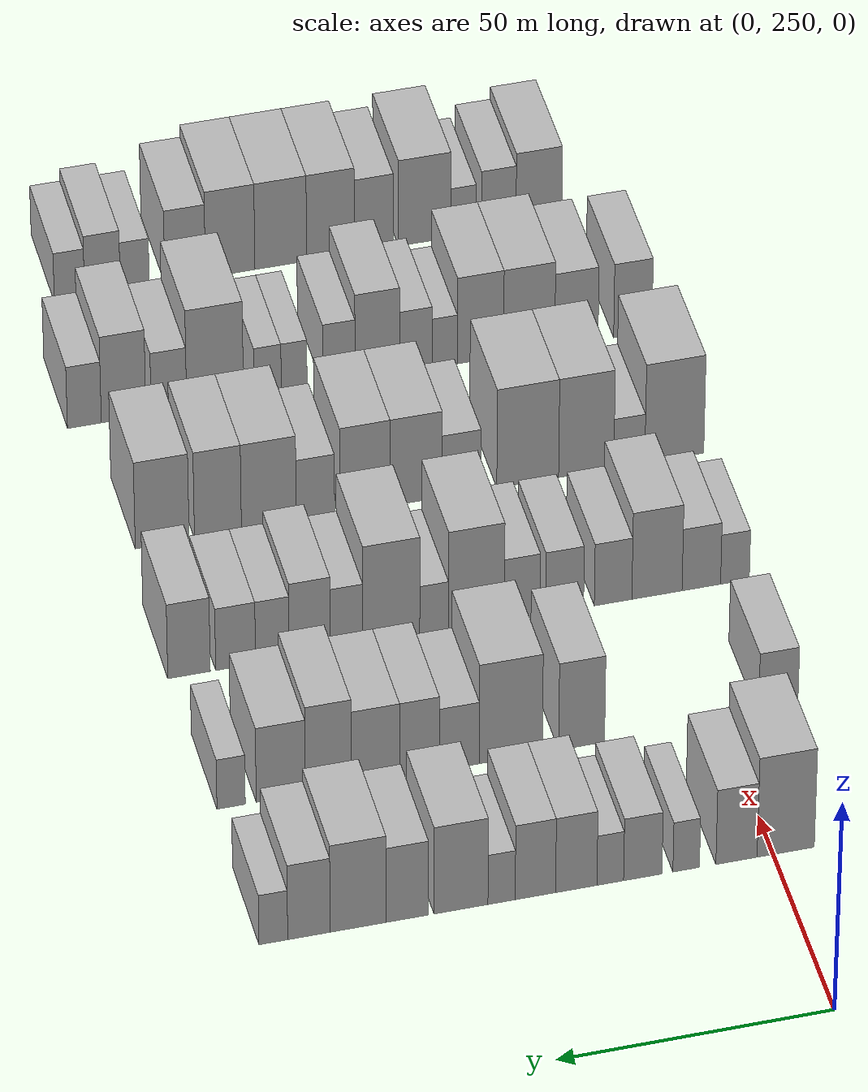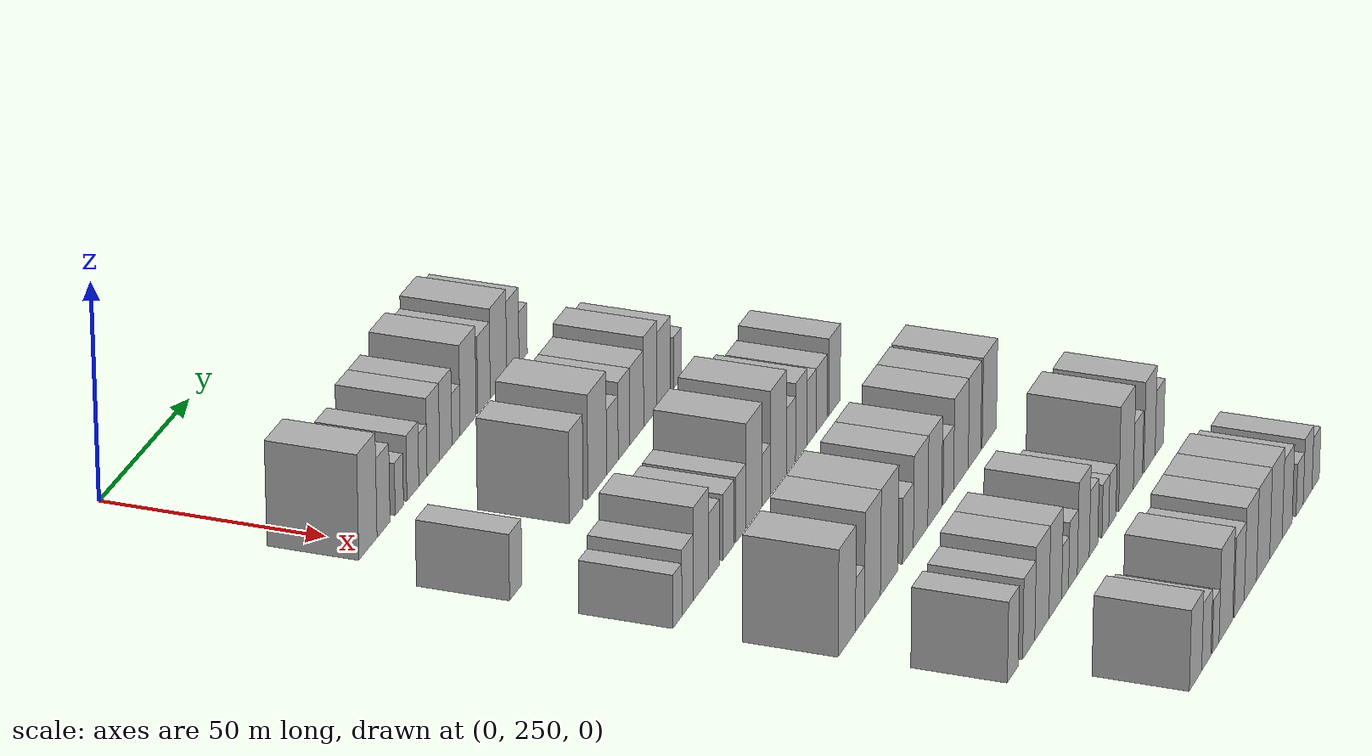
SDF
<sdf version="1.6">
 <world name="default">
  <model name="building_74">
   <static>1</static>
   <pose>50.0000 247.7306 0 0.000000 0.000000 0.000000</pose>
   <link name="link">
    <pose>0 0 12.00 0 0 0</pose>
    <collision name="collision"><geometry><box><size>20.0000 10.4623 24.0000</size></box></geometry></collision>
    <visual name="visual">
     <cast_shadows>0</cast_shadows>
     <geometry><box><size>20.0000 10.4623 24.0000</size></box></geometry>
     <material>
      <script>
       <uri>model://HANNAS_wall/materials/scripts</uri>
       <uri>model://HANNAS_wall/materials/textures</uri>
       <name>vrc/HANNAS_wall</name>
      </script>
     </material>
    </visual>
   </link>
  </model>
  <model name="building_75">
   <static>1</static>
   <pose>50.0000 256.7240 0 0.000000 0.000000 0.000000</pose>
   <link name="link">
    <pose>0 0 9.00 0 0 0</pose>
    <collision name="collision"><geometry><box><size>20.0000 7.5244 18.0000</size></box></geometry></collision>
    <visual name="visual">
     <cast_shadows>0</cast_shadows>
     <geometry><box><size>20.0000 7.5244 18.0000</size></box></geometry>
     <material>
      <script>
       <uri>model://HANNAS_wall/materials/scripts</uri>
       <uri>model://HANNAS_wall/materials/textures</uri>
       <name>vrc/HANNAS_wall</name>
      </script>
     </material>
    </visual>
   </link>
  </model>
  <model name="building_76">
   <static>1</static>
   <pose>50.0000 265.9073 0 0.000000 0.000000 0.000000</pose>
   <link name="link">
    <pose>0 0 6.00 0 0 0</pose>
    <collision name="collision"><geometry><box><size>20.0000 4.8422 12.0000</size></box></geometry></collision>
    <visual name="visual">
     <cast_shadows>0</cast_shadows>
     <geometry><box><size>20.0000 4.8422 12.0000</size></box></geometry>
     <material>
      <script>
       <uri>model://HANNAS_wall/materials/scripts</uri>
       <uri>model://HANNAS_wall/materials/textures</uri>
       <name>vrc/HANNAS_wall</name>
      </script>
     </material>
    </visual>
   </link>
  </model>
  <model name="building_77">
   <static>1</static>
   <pose>50.0000 273.8192 0 0.000000 0.000000 0.000000</pose>
   <link name="link">
    <pose>0 0 7.50 0 0 0</pose>
    <collision name="collision"><geometry><box><size>20.0000 6.9817 15.0000</size></box></geometry></collision>
    <visual name="visual">
     <cast_shadows>0</cast_shadows>
     <geometry><box><size>20.0000 6.9817 15.0000</size></box></geometry>
     <material>
      <script>
       <uri>model://HANNAS_wall/materials/scripts</uri>
       <uri>model://HANNAS_wall/materials/textures</uri>
       <name>vrc/HANNAS_wall</name>
      </script>
     </material>
    </visual>
   </link>
  </model>
  <model name="building_78">
   <static>1</static>
   <pose>50.0000 279.7344 0 0.000000 0.000000 0.000000</pose>
   <link name="link">
    <pose>0 0 6.00 0 0 0</pose>
    <collision name="collision"><geometry><box><size>20.0000 4.8487 12.0000</size></box></geometry></collision>
    <visual name="visual">
     <cast_shadows>0</cast_shadows>
     <geometry><box><size>20.0000 4.8487 12.0000</size></box></geometry>
     <material>
      <script>
       <uri>model://HANNAS_wall/materials/scripts</uri>
       <uri>model://HANNAS_wall/materials/textures</uri>
       <name>vrc/HANNAS_wall</name>
      </script>
     </material>
    </visual>
   </link>
  </model>
  <model name="building_79">
   <static>1</static>
   <pose>50.0000 285.9103 0 0.000000 0.000000 0.000000</pose>
   <link name="link">
    <pose>0 0 9.00 0 0 0</pose>
    <collision name="collision"><geometry><box><size>20.0000 7.5031 18.0000</size></box></geometry></collision>
    <visual name="visual">
     <cast_shadows>0</cast_shadows>
     <geometry><box><size>20.0000 7.5031 18.0000</size></box></geometry>
     <material>
      <script>
       <uri>model://HANNAS_wall/materials/scripts</uri>
       <uri>model://HANNAS_wall/materials/textures</uri>
       <name>vrc/HANNAS_wall</name>
      </script>
     </material>
    </visual>
   </link>
  </model>
  <model name="building_80">
   <static>1</static>
   <pose>50.0000 293.3218 0 0.000000 0.000000 0.000000</pose>
   <link name="link">
    <pose>0 0 9.00 0 0 0</pose>
    <collision name="collision"><geometry><box><size>20.0000 7.3199 18.0000</size></box></geometry></collision>
    <visual name="visual">
     <cast_shadows>0</cast_shadows>
     <geometry><box><size>20.0000 7.3199 18.0000</size></box></geometry>
     <material>
      <script>
       <uri>model://HANNAS_wall/materials/scripts</uri>
       <uri>model://HANNAS_wall/materials/textures</uri>
       <name>vrc/HANNAS_wall</name>
      </script>
     </material>
    </visual>
   </link>
  </model>
  <model name="building_81">
   <static>1</static>
   <pose>50.0000 299.4504 0 0.000000 0.000000 0.000000</pose>
   <link name="link">
    <pose>0 0 6.00 0 0 0</pose>
    <collision name="collision"><geometry><box><size>20.0000 4.9373 12.0000</size></box></geometry></collision>
    <visual name="visual">
     <cast_shadows>0</cast_shadows>
     <geometry><box><size>20.0000 4.9373 12.0000</size></box></geometry>
     <material>
      <script>
       <uri>model://HANNAS_wall/materials/scripts</uri>
       <uri>model://HANNAS_wall/materials/textures</uri>
       <name>vrc/HANNAS_wall</name>
      </script>
     </material>
    </visual>
   </link>
  </model>
  <model name="building_82">
   <static>1</static>
   <pose>50.0000 306.7969 0 0.000000 0.000000 0.000000</pose>
   <link name="link">
    <pose>0 0 10.50 0 0 0</pose>
    <collision name="collision"><geometry><box><size>20.0000 9.7556 21.0000</size></box></geometry></collision>
    <visual name="visual">
     <cast_shadows>0</cast_shadows>
     <geometry><box><size>20.0000 9.7556 21.0000</size></box></geometry>
     <material>
      <script>
       <uri>model://HANNAS_wall/materials/scripts</uri>
       <uri>model://HANNAS_wall/materials/textures</uri>
       <name>vrc/HANNAS_wall</name>
      </script>
     </material>
    </visual>
   </link>
  </model>
  <model name="building_83">
   <static>1</static>
   <pose>50.0000 316.4888 0 0.000000 0.000000 0.000000</pose>
   <link name="link">
    <pose>0 0 9.00 0 0 0</pose>
    <collision name="collision"><geometry><box><size>20.0000 7.6284 18.0000</size></box></geometry></collision>
    <visual name="visual">
     <cast_shadows>0</cast_shadows>
     <geometry><box><size>20.0000 7.6284 18.0000</size></box></geometry>
     <material>
      <script>
       <uri>model://HANNAS_wall/materials/scripts</uri>
       <uri>model://HANNAS_wall/materials/textures</uri>
       <name>vrc/HANNAS_wall</name>
      </script>
     </material>
    </visual>
   </link>
  </model>
  <model name="building_84">
   <static>1</static>
   <pose>50.0000 325.3522 0 0.000000 0.000000 0.000000</pose>
   <link name="link">
    <pose>0 0 10.50 0 0 0</pose>
    <collision name="collision"><geometry><box><size>20.0000 10.0983 21.0000</size></box></geometry></collision>
    <visual name="visual">
     <cast_shadows>0</cast_shadows>
     <geometry><box><size>20.0000 10.0983 21.0000</size></box></geometry>
     <material>
      <script>
       <uri>model://HANNAS_wall/materials/scripts</uri>
       <uri>model://HANNAS_wall/materials/textures</uri>
       <name>vrc/HANNAS_wall</name>
      </script>
     </material>
    </visual>
   </link>
  </model>
  <model name="building_85">
   <static>1</static>
   <pose>50.0000 334.2241 0 0.000000 0.000000 0.000000</pose>
   <link name="link">
    <pose>0 0 9.00 0 0 0</pose>
    <collision name="collision"><geometry><box><size>20.0000 7.6456 18.0000</size></box></geometry></collision>
    <visual name="visual">
     <cast_shadows>0</cast_shadows>
     <geometry><box><size>20.0000 7.6456 18.0000</size></box></geometry>
     <material>
      <script>
       <uri>model://HANNAS_wall/materials/scripts</uri>
       <uri>model://HANNAS_wall/materials/textures</uri>
       <name>vrc/HANNAS_wall</name>
      </script>
     </material>
    </visual>
   </link>
  </model>
  <model name="building_86">
   <static>1</static>
   <pose>50.0000 340.6278 0 0.000000 0.000000 0.000000</pose>
   <link name="link">
    <pose>0 0 6.00 0 0 0</pose>
    <collision name="collision"><geometry><box><size>20.0000 5.1618 12.0000</size></box></geometry></collision>
    <visual name="visual">
     <cast_shadows>0</cast_shadows>
     <geometry><box><size>20.0000 5.1618 12.0000</size></box></geometry>
     <material>
      <script>
       <uri>model://HANNAS_wall/materials/scripts</uri>
       <uri>model://HANNAS_wall/materials/textures</uri>
       <name>vrc/HANNAS_wall</name>
      </script>
     </material>
    </visual>
   </link>
  </model>
  <model name="building_200">
   <static>1</static>
   <pose>85.0000 239.4064 0 0.000000 0.000000 0.000000</pose>
   <link name="link">
    <pose>0 0 7.50 0 0 0</pose>
    <collision name="collision"><geometry><box><size>20.0000 7.2721 15.0000</size></box></geometry></collision>
    <visual name="visual">
     <cast_shadows>0</cast_shadows>
     <geometry><box><size>20.0000 7.2721 15.0000</size></box></geometry>
     <material>
      <script>
       <uri>model://HANNAS_wall/materials/scripts</uri>
       <uri>model://HANNAS_wall/materials/textures</uri>
       <name>vrc/HANNAS_wall</name>
      </script>
     </material>
    </visual>
   </link>
  </model>
  <model name="building_201">
   <static>1</static>
   <pose>85.0000 275.7468 0 0.000000 0.000000 0.000000</pose>
   <link name="link">
    <pose>0 0 10.50 0 0 0</pose>
    <collision name="collision"><geometry><box><size>20.0000 8.4696 21.0000</size></box></geometry></collision>
    <visual name="visual">
     <cast_shadows>0</cast_shadows>
     <geometry><box><size>20.0000 8.4696 21.0000</size></box></geometry>
     <material>
      <script>
       <uri>model://HANNAS_wall/materials/scripts</uri>
       <uri>model://HANNAS_wall/materials/textures</uri>
       <name>vrc/HANNAS_wall</name>
      </script>
     </material>
    </visual>
   </link>
  </model>
  <model name="building_202">
   <static>1</static>
   <pose>85.0000 288.7773 0 0.000000 0.000000 0.000000</pose>
   <link name="link">
    <pose>0 0 12.00 0 0 0</pose>
    <collision name="collision"><geometry><box><size>20.0000 11.5916 24.0000</size></box></geometry></collision>
    <visual name="visual">
     <cast_shadows>0</cast_shadows>
     <geometry><box><size>20.0000 11.5916 24.0000</size></box></geometry>
     <material>
      <script>
       <uri>model://HANNAS_wall/materials/scripts</uri>
       <uri>model://HANNAS_wall/materials/textures</uri>
       <name>vrc/HANNAS_wall</name>
      </script>
     </material>
    </visual>
   </link>
  </model>
  <model name="building_203">
   <static>1</static>
   <pose>85.0000 298.2194 0 0.000000 0.000000 0.000000</pose>
   <link name="link">
    <pose>0 0 7.50 0 0 0</pose>
    <collision name="collision"><geometry><box><size>20.0000 7.2926 15.0000</size></box></geometry></collision>
    <visual name="visual">
     <cast_shadows>0</cast_shadows>
     <geometry><box><size>20.0000 7.2926 15.0000</size></box></geometry>
     <material>
      <script>
       <uri>model://HANNAS_wall/materials/scripts</uri>
       <uri>model://HANNAS_wall/materials/textures</uri>
       <name>vrc/HANNAS_wall</name>
      </script>
     </material>
    </visual>
   </link>
  </model>
  <model name="building_204">
   <static>1</static>
   <pose>85.0000 305.4978 0 0.000000 0.000000 0.000000</pose>
   <link name="link">
    <pose>0 0 9.00 0 0 0</pose>
    <collision name="collision"><geometry><box><size>20.0000 7.2642 18.0000</size></box></geometry></collision>
    <visual name="visual">
     <cast_shadows>0</cast_shadows>
     <geometry><box><size>20.0000 7.2642 18.0000</size></box></geometry>
     <material>
      <script>
       <uri>model://HANNAS_wall/materials/scripts</uri>
       <uri>model://HANNAS_wall/materials/textures</uri>
       <name>vrc/HANNAS_wall</name>
      </script>
     </material>
    </visual>
   </link>
  </model>
  <model name="building_205">
   <static>1</static>
   <pose>85.0000 313.5564 0 0.000000 0.000000 0.000000</pose>
   <link name="link">
    <pose>0 0 9.00 0 0 0</pose>
    <collision name="collision"><geometry><box><size>20.0000 8.8530 18.0000</size></box></geometry></collision>
    <visual name="visual">
     <cast_shadows>0</cast_shadows>
     <geometry><box><size>20.0000 8.8530 18.0000</size></box></geometry>
     <material>
      <script>
       <uri>model://HANNAS_wall/materials/scripts</uri>
       <uri>model://HANNAS_wall/materials/textures</uri>
       <name>vrc/HANNAS_wall</name>
      </script>
     </material>
    </visual>
   </link>
  </model>
  <model name="building_206">
   <static>1</static>
   <pose>85.0000 322.1854 0 0.000000 0.000000 0.000000</pose>
   <link name="link">
    <pose>0 0 10.50 0 0 0</pose>
    <collision name="collision"><geometry><box><size>20.0000 8.4050 21.0000</size></box></geometry></collision>
    <visual name="visual">
     <cast_shadows>0</cast_shadows>
     <geometry><box><size>20.0000 8.4050 21.0000</size></box></geometry>
     <material>
      <script>
       <uri>model://HANNAS_wall/materials/scripts</uri>
       <uri>model://HANNAS_wall/materials/textures</uri>
       <name>vrc/HANNAS_wall</name>
      </script>
     </material>
    </visual>
   </link>
  </model>
  <model name="building_207">
   <static>1</static>
   <pose>85.0000 330.8648 0 0.000000 0.000000 0.000000</pose>
   <link name="link">
    <pose>0 0 9.00 0 0 0</pose>
    <collision name="collision"><geometry><box><size>20.0000 8.9538 18.0000</size></box></geometry></collision>
    <visual name="visual">
     <cast_shadows>0</cast_shadows>
     <geometry><box><size>20.0000 8.9538 18.0000</size></box></geometry>
     <material>
      <script>
       <uri>model://HANNAS_wall/materials/scripts</uri>
       <uri>model://HANNAS_wall/materials/textures</uri>
       <name>vrc/HANNAS_wall</name>
      </script>
     </material>
    </visual>
   </link>
  </model>
  <model name="building_208">
   <static>1</static>
   <pose>85.0000 339.9182 0 0.000000 0.000000 0.000000</pose>
   <link name="link">
    <pose>0 0 6.00 0 0 0</pose>
    <collision name="collision"><geometry><box><size>20.0000 5.1531 12.0000</size></box></geometry></collision>
    <visual name="visual">
     <cast_shadows>0</cast_shadows>
     <geometry><box><size>20.0000 5.1531 12.0000</size></box></geometry>
     <material>
      <script>
       <uri>model://HANNAS_wall/materials/scripts</uri>
       <uri>model://HANNAS_wall/materials/textures</uri>
       <name>vrc/HANNAS_wall</name>
      </script>
     </material>
    </visual>
   </link>
  </model>
  <model name="building_324">
   <static>1</static>
   <pose>120.0000 237.8072 0 0.000000 0.000000 0.000000</pose>
   <link name="link">
    <pose>0 0 6.00 0 0 0</pose>
    <collision name="collision"><geometry><box><size>20.0000 5.3894 12.0000</size></box></geometry></collision>
    <visual name="visual">
     <cast_shadows>0</cast_shadows>
     <geometry><box><size>20.0000 5.3894 12.0000</size></box></geometry>
     <material>
      <script>
       <uri>model://HANNAS_wall/materials/scripts</uri>
       <uri>model://HANNAS_wall/materials/textures</uri>
       <name>vrc/HANNAS_wall</name>
      </script>
     </material>
    </visual>
   </link>
  </model>
  <model name="building_325">
   <static>1</static>
   <pose>120.0000 244.1196 0 0.000000 0.000000 0.000000</pose>
   <link name="link">
    <pose>0 0 7.50 0 0 0</pose>
    <collision name="collision"><geometry><box><size>20.0000 7.2354 15.0000</size></box></geometry></collision>
    <visual name="visual">
     <cast_shadows>0</cast_shadows>
     <geometry><box><size>20.0000 7.2354 15.0000</size></box></geometry>
     <material>
      <script>
       <uri>model://HANNAS_wall/materials/scripts</uri>
       <uri>model://HANNAS_wall/materials/textures</uri>
       <name>vrc/HANNAS_wall</name>
      </script>
     </material>
    </visual>
   </link>
  </model>
  <model name="building_326">
   <static>1</static>
   <pose>120.0000 252.4423 0 0.000000 0.000000 0.000000</pose>
   <link name="link">
    <pose>0 0 10.50 0 0 0</pose>
    <collision name="collision"><geometry><box><size>20.0000 9.4100 21.0000</size></box></geometry></collision>
    <visual name="visual">
     <cast_shadows>0</cast_shadows>
     <geometry><box><size>20.0000 9.4100 21.0000</size></box></geometry>
     <material>
      <script>
       <uri>model://HANNAS_wall/materials/scripts</uri>
       <uri>model://HANNAS_wall/materials/textures</uri>
       <name>vrc/HANNAS_wall</name>
      </script>
     </material>
    </visual>
   </link>
  </model>
  <model name="building_327">
   <static>1</static>
   <pose>120.0000 260.6576 0 0.000000 0.000000 0.000000</pose>
   <link name="link">
    <pose>0 0 7.50 0 0 0</pose>
    <collision name="collision"><geometry><box><size>20.0000 7.0206 15.0000</size></box></geometry></collision>
    <visual name="visual">
     <cast_shadows>0</cast_shadows>
     <geometry><box><size>20.0000 7.0206 15.0000</size></box></geometry>
     <material>
      <script>
       <uri>model://HANNAS_wall/materials/scripts</uri>
       <uri>model://HANNAS_wall/materials/textures</uri>
       <name>vrc/HANNAS_wall</name>
      </script>
     </material>
    </visual>
   </link>
  </model>
  <model name="building_328">
   <static>1</static>
   <pose>120.0000 269.7327 0 0.000000 0.000000 0.000000</pose>
   <link name="link">
    <pose>0 0 7.50 0 0 0</pose>
    <collision name="collision"><geometry><box><size>20.0000 7.1295 15.0000</size></box></geometry></collision>
    <visual name="visual">
     <cast_shadows>0</cast_shadows>
     <geometry><box><size>20.0000 7.1295 15.0000</size></box></geometry>
     <material>
      <script>
       <uri>model://HANNAS_wall/materials/scripts</uri>
       <uri>model://HANNAS_wall/materials/textures</uri>
       <name>vrc/HANNAS_wall</name>
      </script>
     </material>
    </visual>
   </link>
  </model>
  <model name="building_329">
   <static>1</static>
   <pose>120.0000 277.6299 0 0.000000 0.000000 0.000000</pose>
   <link name="link">
    <pose>0 0 7.50 0 0 0</pose>
    <collision name="collision"><geometry><box><size>20.0000 6.6650 15.0000</size></box></geometry></collision>
    <visual name="visual">
     <cast_shadows>0</cast_shadows>
     <geometry><box><size>20.0000 6.6650 15.0000</size></box></geometry>
     <material>
      <script>
       <uri>model://HANNAS_wall/materials/scripts</uri>
       <uri>model://HANNAS_wall/materials/textures</uri>
       <name>vrc/HANNAS_wall</name>
      </script>
     </material>
    </visual>
   </link>
  </model>
  <model name="building_330">
   <static>1</static>
   <pose>120.0000 286.1526 0 0.000000 0.000000 0.000000</pose>
   <link name="link">
    <pose>0 0 12.00 0 0 0</pose>
    <collision name="collision"><geometry><box><size>20.0000 10.3803 24.0000</size></box></geometry></collision>
    <visual name="visual">
     <cast_shadows>0</cast_shadows>
     <geometry><box><size>20.0000 10.3803 24.0000</size></box></geometry>
     <material>
      <script>
       <uri>model://HANNAS_wall/materials/scripts</uri>
       <uri>model://HANNAS_wall/materials/textures</uri>
       <name>vrc/HANNAS_wall</name>
      </script>
     </material>
    </visual>
   </link>
  </model>
  <model name="building_331">
   <static>1</static>
   <pose>120.0000 294.0186 0 0.000000 0.000000 0.000000</pose>
   <link name="link">
    <pose>0 0 6.00 0 0 0</pose>
    <collision name="collision"><geometry><box><size>20.0000 5.3516 12.0000</size></box></geometry></collision>
    <visual name="visual">
     <cast_shadows>0</cast_shadows>
     <geometry><box><size>20.0000 5.3516 12.0000</size></box></geometry>
     <material>
      <script>
       <uri>model://HANNAS_wall/materials/scripts</uri>
       <uri>model://HANNAS_wall/materials/textures</uri>
       <name>vrc/HANNAS_wall</name>
      </script>
     </material>
    </visual>
   </link>
  </model>
  <model name="building_332">
   <static>1</static>
   <pose>120.0000 301.9663 0 0.000000 0.000000 0.000000</pose>
   <link name="link">
    <pose>0 0 12.00 0 0 0</pose>
    <collision name="collision"><geometry><box><size>20.0000 10.5440 24.0000</size></box></geometry></collision>
    <visual name="visual">
     <cast_shadows>0</cast_shadows>
     <geometry><box><size>20.0000 10.5440 24.0000</size></box></geometry>
     <material>
      <script>
       <uri>model://HANNAS_wall/materials/scripts</uri>
       <uri>model://HANNAS_wall/materials/textures</uri>
       <name>vrc/HANNAS_wall</name>
      </script>
     </material>
    </visual>
   </link>
  </model>
  <model name="building_333">
   <static>1</static>
   <pose>120.0000 310.2486 0 0.000000 0.000000 0.000000</pose>
   <link name="link">
    <pose>0 0 7.50 0 0 0</pose>
    <collision name="collision"><geometry><box><size>20.0000 6.0206 15.0000</size></box></geometry></collision>
    <visual name="visual">
     <cast_shadows>0</cast_shadows>
     <geometry><box><size>20.0000 6.0206 15.0000</size></box></geometry>
     <material>
      <script>
       <uri>model://HANNAS_wall/materials/scripts</uri>
       <uri>model://HANNAS_wall/materials/textures</uri>
       <name>vrc/HANNAS_wall</name>
      </script>
     </material>
    </visual>
   </link>
  </model>
  <model name="building_334">
   <static>1</static>
   <pose>120.0000 317.0669 0 0.000000 0.000000 0.000000</pose>
   <link name="link">
    <pose>0 0 9.00 0 0 0</pose>
    <collision name="collision"><geometry><box><size>20.0000 7.6159 18.0000</size></box></geometry></collision>
    <visual name="visual">
     <cast_shadows>0</cast_shadows>
     <geometry><box><size>20.0000 7.6159 18.0000</size></box></geometry>
     <material>
      <script>
       <uri>model://HANNAS_wall/materials/scripts</uri>
       <uri>model://HANNAS_wall/materials/textures</uri>
       <name>vrc/HANNAS_wall</name>
      </script>
     </material>
    </visual>
   </link>
  </model>
  <model name="building_335">
   <static>1</static>
   <pose>120.0000 323.9970 0 0.000000 0.000000 0.000000</pose>
   <link name="link">
    <pose>0 0 7.50 0 0 0</pose>
    <collision name="collision"><geometry><box><size>20.0000 6.2444 15.0000</size></box></geometry></collision>
    <visual name="visual">
     <cast_shadows>0</cast_shadows>
     <geometry><box><size>20.0000 6.2444 15.0000</size></box></geometry>
     <material>
      <script>
       <uri>model://HANNAS_wall/materials/scripts</uri>
       <uri>model://HANNAS_wall/materials/textures</uri>
       <name>vrc/HANNAS_wall</name>
      </script>
     </material>
    </visual>
   </link>
  </model>
  <model name="building_336">
   <static>1</static>
   <pose>120.0000 330.7980 0 0.000000 0.000000 0.000000</pose>
   <link name="link">
    <pose>0 0 7.50 0 0 0</pose>
    <collision name="collision"><geometry><box><size>20.0000 7.3575 15.0000</size></box></geometry></collision>
    <visual name="visual">
     <cast_shadows>0</cast_shadows>
     <geometry><box><size>20.0000 7.3575 15.0000</size></box></geometry>
     <material>
      <script>
       <uri>model://HANNAS_wall/materials/scripts</uri>
       <uri>model://HANNAS_wall/materials/textures</uri>
       <name>vrc/HANNAS_wall</name>
      </script>
     </material>
    </visual>
   </link>
  </model>
  <model name="building_337">
   <static>1</static>
   <pose>120.0000 339.3945 0 0.000000 0.000000 0.000000</pose>
   <link name="link">
    <pose>0 0 9.00 0 0 0</pose>
    <collision name="collision"><geometry><box><size>20.0000 7.8355 18.0000</size></box></geometry></collision>
    <visual name="visual">
     <cast_shadows>0</cast_shadows>
     <geometry><box><size>20.0000 7.8355 18.0000</size></box></geometry>
     <material>
      <script>
       <uri>model://HANNAS_wall/materials/scripts</uri>
       <uri>model://HANNAS_wall/materials/textures</uri>
       <name>vrc/HANNAS_wall</name>
      </script>
     </material>
    </visual>
   </link>
  </model>
  <model name="building_440">
   <static>1</static>
   <pose>155.0000 239.7548 0 0.000000 0.000000 0.000000</pose>
   <link name="link">
    <pose>0 0 12.00 0 0 0</pose>
    <collision name="collision"><geometry><box><size>20.0000 11.1986 24.0000</size></box></geometry></collision>
    <visual name="visual">
     <cast_shadows>0</cast_shadows>
     <geometry><box><size>20.0000 11.1986 24.0000</size></box></geometry>
     <material>
      <script>
       <uri>model://HANNAS_wall/materials/scripts</uri>
       <uri>model://HANNAS_wall/materials/textures</uri>
       <name>vrc/HANNAS_wall</name>
      </script>
     </material>
    </visual>
   </link>
  </model>
  <model name="building_441">
   <static>1</static>
   <pose>155.0000 248.2988 0 0.000000 0.000000 0.000000</pose>
   <link name="link">
    <pose>0 0 6.00 0 0 0</pose>
    <collision name="collision"><geometry><box><size>20.0000 5.8895 12.0000</size></box></geometry></collision>
    <visual name="visual">
     <cast_shadows>0</cast_shadows>
     <geometry><box><size>20.0000 5.8895 12.0000</size></box></geometry>
     <material>
      <script>
       <uri>model://HANNAS_wall/materials/scripts</uri>
       <uri>model://HANNAS_wall/materials/textures</uri>
       <name>vrc/HANNAS_wall</name>
      </script>
     </material>
    </visual>
   </link>
  </model>
  <model name="building_442">
   <static>1</static>
   <pose>155.0000 256.4727 0 0.000000 0.000000 0.000000</pose>
   <link name="link">
    <pose>0 0 12.00 0 0 0</pose>
    <collision name="collision"><geometry><box><size>20.0000 10.4583 24.0000</size></box></geometry></collision>
    <visual name="visual">
     <cast_shadows>0</cast_shadows>
     <geometry><box><size>20.0000 10.4583 24.0000</size></box></geometry>
     <material>
      <script>
       <uri>model://HANNAS_wall/materials/scripts</uri>
       <uri>model://HANNAS_wall/materials/textures</uri>
       <name>vrc/HANNAS_wall</name>
      </script>
     </material>
    </visual>
   </link>
  </model>
  <model name="building_443">
   <static>1</static>
   <pose>155.0000 267.5448 0 0.000000 0.000000 0.000000</pose>
   <link name="link">
    <pose>0 0 12.00 0 0 0</pose>
    <collision name="collision"><geometry><box><size>20.0000 11.6859 24.0000</size></box></geometry></collision>
    <visual name="visual">
     <cast_shadows>0</cast_shadows>
     <geometry><box><size>20.0000 11.6859 24.0000</size></box></geometry>
     <material>
      <script>
       <uri>model://HANNAS_wall/materials/scripts</uri>
       <uri>model://HANNAS_wall/materials/textures</uri>
       <name>vrc/HANNAS_wall</name>
      </script>
     </material>
    </visual>
   </link>
  </model>
  <model name="building_444">
   <static>1</static>
   <pose>155.0000 280.0431 0 0.000000 0.000000 0.000000</pose>
   <link name="link">
    <pose>0 0 7.50 0 0 0</pose>
    <collision name="collision"><geometry><box><size>20.0000 7.3107 15.0000</size></box></geometry></collision>
    <visual name="visual">
     <cast_shadows>0</cast_shadows>
     <geometry><box><size>20.0000 7.3107 15.0000</size></box></geometry>
     <material>
      <script>
       <uri>model://HANNAS_wall/materials/scripts</uri>
       <uri>model://HANNAS_wall/materials/textures</uri>
       <name>vrc/HANNAS_wall</name>
      </script>
     </material>
    </visual>
   </link>
  </model>
  <model name="building_445">
   <static>1</static>
   <pose>155.0000 288.5845 0 0.000000 0.000000 0.000000</pose>
   <link name="link">
    <pose>0 0 10.50 0 0 0</pose>
    <collision name="collision"><geometry><box><size>20.0000 9.7721 21.0000</size></box></geometry></collision>
    <visual name="visual">
     <cast_shadows>0</cast_shadows>
     <geometry><box><size>20.0000 9.7721 21.0000</size></box></geometry>
     <material>
      <script>
       <uri>model://HANNAS_wall/materials/scripts</uri>
       <uri>model://HANNAS_wall/materials/textures</uri>
       <name>vrc/HANNAS_wall</name>
      </script>
     </material>
    </visual>
   </link>
  </model>
  <model name="building_446">
   <static>1</static>
   <pose>155.0000 298.2001 0 0.000000 0.000000 0.000000</pose>
   <link name="link">
    <pose>0 0 10.50 0 0 0</pose>
    <collision name="collision"><geometry><box><size>20.0000 9.4590 21.0000</size></box></geometry></collision>
    <visual name="visual">
     <cast_shadows>0</cast_shadows>
     <geometry><box><size>20.0000 9.4590 21.0000</size></box></geometry>
     <material>
      <script>
       <uri>model://HANNAS_wall/materials/scripts</uri>
       <uri>model://HANNAS_wall/materials/textures</uri>
       <name>vrc/HANNAS_wall</name>
      </script>
     </material>
    </visual>
   </link>
  </model>
  <model name="building_447">
   <static>1</static>
   <pose>155.0000 307.5301 0 0.000000 0.000000 0.000000</pose>
   <link name="link">
    <pose>0 0 7.50 0 0 0</pose>
    <collision name="collision"><geometry><box><size>20.0000 7.2011 15.0000</size></box></geometry></collision>
    <visual name="visual">
     <cast_shadows>0</cast_shadows>
     <geometry><box><size>20.0000 7.2011 15.0000</size></box></geometry>
     <material>
      <script>
       <uri>model://HANNAS_wall/materials/scripts</uri>
       <uri>model://HANNAS_wall/materials/textures</uri>
       <name>vrc/HANNAS_wall</name>
      </script>
     </material>
    </visual>
   </link>
  </model>
  <model name="building_448">
   <static>1</static>
   <pose>155.0000 316.2704 0 0.000000 0.000000 0.000000</pose>
   <link name="link">
    <pose>0 0 10.50 0 0 0</pose>
    <collision name="collision"><geometry><box><size>20.0000 10.2794 21.0000</size></box></geometry></collision>
    <visual name="visual">
     <cast_shadows>0</cast_shadows>
     <geometry><box><size>20.0000 10.2794 21.0000</size></box></geometry>
     <material>
      <script>
       <uri>model://HANNAS_wall/materials/scripts</uri>
       <uri>model://HANNAS_wall/materials/textures</uri>
       <name>vrc/HANNAS_wall</name>
      </script>
     </material>
    </visual>
   </link>
  </model>
  <model name="building_449">
   <static>1</static>
   <pose>155.0000 325.8032 0 0.000000 0.000000 0.000000</pose>
   <link name="link">
    <pose>0 0 10.50 0 0 0</pose>
    <collision name="collision"><geometry><box><size>20.0000 8.7863 21.0000</size></box></geometry></collision>
    <visual name="visual">
     <cast_shadows>0</cast_shadows>
     <geometry><box><size>20.0000 8.7863 21.0000</size></box></geometry>
     <material>
      <script>
       <uri>model://HANNAS_wall/materials/scripts</uri>
       <uri>model://HANNAS_wall/materials/textures</uri>
       <name>vrc/HANNAS_wall</name>
      </script>
     </material>
    </visual>
   </link>
  </model>
  <model name="building_450">
   <static>1</static>
   <pose>155.0000 336.2239 0 0.000000 0.000000 0.000000</pose>
   <link name="link">
    <pose>0 0 10.50 0 0 0</pose>
    <collision name="collision"><geometry><box><size>20.0000 10.0549 21.0000</size></box></geometry></collision>
    <visual name="visual">
     <cast_shadows>0</cast_shadows>
     <geometry><box><size>20.0000 10.0549 21.0000</size></box></geometry>
     <material>
      <script>
       <uri>model://HANNAS_wall/materials/scripts</uri>
       <uri>model://HANNAS_wall/materials/textures</uri>
       <name>vrc/HANNAS_wall</name>
      </script>
     </material>
    </visual>
   </link>
  </model>
  <model name="building_565">
   <static>1</static>
   <pose>190.0000 238.3054 0 0.000000 0.000000 0.000000</pose>
   <link name="link">
    <pose>0 0 9.00 0 0 0</pose>
    <collision name="collision"><geometry><box><size>20.0000 7.3586 18.0000</size></box></geometry></collision>
    <visual name="visual">
     <cast_shadows>0</cast_shadows>
     <geometry><box><size>20.0000 7.3586 18.0000</size></box></geometry>
     <material>
      <script>
       <uri>model://HANNAS_wall/materials/scripts</uri>
       <uri>model://HANNAS_wall/materials/textures</uri>
       <name>vrc/HANNAS_wall</name>
      </script>
     </material>
    </visual>
   </link>
  </model>
  <model name="building_566">
   <static>1</static>
   <pose>190.0000 249.1410 0 0.000000 0.000000 0.000000</pose>
   <link name="link">
    <pose>0 0 9.00 0 0 0</pose>
    <collision name="collision"><geometry><box><size>20.0000 8.3128 18.0000</size></box></geometry></collision>
    <visual name="visual">
     <cast_shadows>0</cast_shadows>
     <geometry><box><size>20.0000 8.3128 18.0000</size></box></geometry>
     <material>
      <script>
       <uri>model://HANNAS_wall/materials/scripts</uri>
       <uri>model://HANNAS_wall/materials/textures</uri>
       <name>vrc/HANNAS_wall</name>
      </script>
     </material>
    </visual>
   </link>
  </model>
  <model name="building_567">
   <static>1</static>
   <pose>190.0000 258.1984 0 0.000000 0.000000 0.000000</pose>
   <link name="link">
    <pose>0 0 10.50 0 0 0</pose>
    <collision name="collision"><geometry><box><size>20.0000 9.8021 21.0000</size></box></geometry></collision>
    <visual name="visual">
     <cast_shadows>0</cast_shadows>
     <geometry><box><size>20.0000 9.8021 21.0000</size></box></geometry>
     <material>
      <script>
       <uri>model://HANNAS_wall/materials/scripts</uri>
       <uri>model://HANNAS_wall/materials/textures</uri>
       <name>vrc/HANNAS_wall</name>
      </script>
     </material>
    </visual>
   </link>
  </model>
  <model name="building_568">
   <static>1</static>
   <pose>190.0000 267.5208 0 0.000000 0.000000 0.000000</pose>
   <link name="link">
    <pose>0 0 10.50 0 0 0</pose>
    <collision name="collision"><geometry><box><size>20.0000 8.8427 21.0000</size></box></geometry></collision>
    <visual name="visual">
     <cast_shadows>0</cast_shadows>
     <geometry><box><size>20.0000 8.8427 21.0000</size></box></geometry>
     <material>
      <script>
       <uri>model://HANNAS_wall/materials/scripts</uri>
       <uri>model://HANNAS_wall/materials/textures</uri>
       <name>vrc/HANNAS_wall</name>
      </script>
     </material>
    </visual>
   </link>
  </model>
  <model name="building_569">
   <static>1</static>
   <pose>190.0000 274.3648 0 0.000000 0.000000 0.000000</pose>
   <link name="link">
    <pose>0 0 6.00 0 0 0</pose>
    <collision name="collision"><geometry><box><size>20.0000 4.8453 12.0000</size></box></geometry></collision>
    <visual name="visual">
     <cast_shadows>0</cast_shadows>
     <geometry><box><size>20.0000 4.8453 12.0000</size></box></geometry>
     <material>
      <script>
       <uri>model://HANNAS_wall/materials/scripts</uri>
       <uri>model://HANNAS_wall/materials/textures</uri>
       <name>vrc/HANNAS_wall</name>
      </script>
     </material>
    </visual>
   </link>
  </model>
  <model name="building_570">
   <static>1</static>
   <pose>190.0000 279.8893 0 0.000000 0.000000 0.000000</pose>
   <link name="link">
    <pose>0 0 7.50 0 0 0</pose>
    <collision name="collision"><geometry><box><size>20.0000 6.2038 15.0000</size></box></geometry></collision>
    <visual name="visual">
     <cast_shadows>0</cast_shadows>
     <geometry><box><size>20.0000 6.2038 15.0000</size></box></geometry>
     <material>
      <script>
       <uri>model://HANNAS_wall/materials/scripts</uri>
       <uri>model://HANNAS_wall/materials/textures</uri>
       <name>vrc/HANNAS_wall</name>
      </script>
     </material>
    </visual>
   </link>
  </model>
  <model name="building_571">
   <static>1</static>
   <pose>190.0000 287.2299 0 0.000000 0.000000 0.000000</pose>
   <link name="link">
    <pose>0 0 10.50 0 0 0</pose>
    <collision name="collision"><geometry><box><size>20.0000 8.4773 21.0000</size></box></geometry></collision>
    <visual name="visual">
     <cast_shadows>0</cast_shadows>
     <geometry><box><size>20.0000 8.4773 21.0000</size></box></geometry>
     <material>
      <script>
       <uri>model://HANNAS_wall/materials/scripts</uri>
       <uri>model://HANNAS_wall/materials/textures</uri>
       <name>vrc/HANNAS_wall</name>
      </script>
     </material>
    </visual>
   </link>
  </model>
  <model name="building_572">
   <static>1</static>
   <pose>190.0000 294.5439 0 0.000000 0.000000 0.000000</pose>
   <link name="link">
    <pose>0 0 7.50 0 0 0</pose>
    <collision name="collision"><geometry><box><size>20.0000 6.1506 15.0000</size></box></geometry></collision>
    <visual name="visual">
     <cast_shadows>0</cast_shadows>
     <geometry><box><size>20.0000 6.1506 15.0000</size></box></geometry>
     <material>
      <script>
       <uri>model://HANNAS_wall/materials/scripts</uri>
       <uri>model://HANNAS_wall/materials/textures</uri>
       <name>vrc/HANNAS_wall</name>
      </script>
     </material>
    </visual>
   </link>
  </model>
  <model name="building_573">
   <static>1</static>
   <pose>190.0000 303.0716 0 0.000000 0.000000 0.000000</pose>
   <link name="link">
    <pose>0 0 6.00 0 0 0</pose>
    <collision name="collision"><geometry><box><size>20.0000 4.9049 12.0000</size></box></geometry></collision>
    <visual name="visual">
     <cast_shadows>0</cast_shadows>
     <geometry><box><size>20.0000 4.9049 12.0000</size></box></geometry>
     <material>
      <script>
       <uri>model://HANNAS_wall/materials/scripts</uri>
       <uri>model://HANNAS_wall/materials/textures</uri>
       <name>vrc/HANNAS_wall</name>
      </script>
     </material>
    </visual>
   </link>
  </model>
  <model name="building_574">
   <static>1</static>
   <pose>190.0000 308.1136 0 0.000000 0.000000 0.000000</pose>
   <link name="link">
    <pose>0 0 6.00 0 0 0</pose>
    <collision name="collision"><geometry><box><size>20.0000 5.1790 12.0000</size></box></geometry></collision>
    <visual name="visual">
     <cast_shadows>0</cast_shadows>
     <geometry><box><size>20.0000 5.1790 12.0000</size></box></geometry>
     <material>
      <script>
       <uri>model://HANNAS_wall/materials/scripts</uri>
       <uri>model://HANNAS_wall/materials/textures</uri>
       <name>vrc/HANNAS_wall</name>
      </script>
     </material>
    </visual>
   </link>
  </model>
  <model name="building_575">
   <static>1</static>
   <pose>190.0000 318.0916 0 0.000000 0.000000 0.000000</pose>
   <link name="link">
    <pose>0 0 12.00 0 0 0</pose>
    <collision name="collision"><geometry><box><size>20.0000 10.7770 24.0000</size></box></geometry></collision>
    <visual name="visual">
     <cast_shadows>0</cast_shadows>
     <geometry><box><size>20.0000 10.7770 24.0000</size></box></geometry>
     <material>
      <script>
       <uri>model://HANNAS_wall/materials/scripts</uri>
       <uri>model://HANNAS_wall/materials/textures</uri>
       <name>vrc/HANNAS_wall</name>
      </script>
     </material>
    </visual>
   </link>
  </model>
  <model name="building_576">
   <static>1</static>
   <pose>190.0000 326.8346 0 0.000000 0.000000 0.000000</pose>
   <link name="link">
    <pose>0 0 7.50 0 0 0</pose>
    <collision name="collision"><geometry><box><size>20.0000 6.7091 15.0000</size></box></geometry></collision>
    <visual name="visual">
     <cast_shadows>0</cast_shadows>
     <geometry><box><size>20.0000 6.7091 15.0000</size></box></geometry>
     <material>
      <script>
       <uri>model://HANNAS_wall/materials/scripts</uri>
       <uri>model://HANNAS_wall/materials/textures</uri>
       <name>vrc/HANNAS_wall</name>
      </script>
     </material>
    </visual>
   </link>
  </model>
  <model name="building_577">
   <static>1</static>
   <pose>190.0000 335.4042 0 0.000000 0.000000 0.000000</pose>
   <link name="link">
    <pose>0 0 10.50 0 0 0</pose>
    <collision name="collision"><geometry><box><size>20.0000 8.4300 21.0000</size></box></geometry></collision>
    <visual name="visual">
     <cast_shadows>0</cast_shadows>
     <geometry><box><size>20.0000 8.4300 21.0000</size></box></geometry>
     <material>
      <script>
       <uri>model://HANNAS_wall/materials/scripts</uri>
       <uri>model://HANNAS_wall/materials/textures</uri>
       <name>vrc/HANNAS_wall</name>
      </script>
     </material>
    </visual>
   </link>
  </model>
  <model name="building_578">
   <static>1</static>
   <pose>190.0000 342.8212 0 0.000000 0.000000 0.000000</pose>
   <link name="link">
    <pose>0 0 7.50 0 0 0</pose>
    <collision name="collision"><geometry><box><size>20.0000 6.4039 15.0000</size></box></geometry></collision>
    <visual name="visual">
     <cast_shadows>0</cast_shadows>
     <geometry><box><size>20.0000 6.4039 15.0000</size></box></geometry>
     <material>
      <script>
       <uri>model://HANNAS_wall/materials/scripts</uri>
       <uri>model://HANNAS_wall/materials/textures</uri>
       <name>vrc/HANNAS_wall</name>
      </script>
     </material>
    </visual>
   </link>
  </model>
  <model name="building_692">
   <static>1</static>
   <pose>225.0000 247.2589 0 0.000000 0.000000 0.000000</pose>
   <link name="link">
    <pose>0 0 9.00 0 0 0</pose>
    <collision name="collision"><geometry><box><size>20.0000 8.8840 18.0000</size></box></geometry></collision>
    <visual name="visual">
     <cast_shadows>0</cast_shadows>
     <geometry><box><size>20.0000 8.8840 18.0000</size></box></geometry>
     <material>
      <script>
       <uri>model://HANNAS_wall/materials/scripts</uri>
       <uri>model://HANNAS_wall/materials/textures</uri>
       <name>vrc/HANNAS_wall</name>
      </script>
     </material>
    </visual>
   </link>
  </model>
  <model name="building_693">
   <static>1</static>
   <pose>225.0000 255.0664 0 0.000000 0.000000 0.000000</pose>
   <link name="link">
    <pose>0 0 7.50 0 0 0</pose>
    <collision name="collision"><geometry><box><size>20.0000 6.7309 15.0000</size></box></geometry></collision>
    <visual name="visual">
     <cast_shadows>0</cast_shadows>
     <geometry><box><size>20.0000 6.7309 15.0000</size></box></geometry>
     <material>
      <script>
       <uri>model://HANNAS_wall/materials/scripts</uri>
       <uri>model://HANNAS_wall/materials/textures</uri>
       <name>vrc/HANNAS_wall</name>
      </script>
     </material>
    </visual>
   </link>
  </model>
  <model name="building_694">
   <static>1</static>
   <pose>225.0000 261.8886 0 0.000000 0.000000 0.000000</pose>
   <link name="link">
    <pose>0 0 6.00 0 0 0</pose>
    <collision name="collision"><geometry><box><size>20.0000 4.9137 12.0000</size></box></geometry></collision>
    <visual name="visual">
     <cast_shadows>0</cast_shadows>
     <geometry><box><size>20.0000 4.9137 12.0000</size></box></geometry>
     <material>
      <script>
       <uri>model://HANNAS_wall/materials/scripts</uri>
       <uri>model://HANNAS_wall/materials/textures</uri>
       <name>vrc/HANNAS_wall</name>
      </script>
     </material>
    </visual>
   </link>
  </model>
  <model name="building_695">
   <static>1</static>
   <pose>225.0000 269.4119 0 0.000000 0.000000 0.000000</pose>
   <link name="link">
    <pose>0 0 10.50 0 0 0</pose>
    <collision name="collision"><geometry><box><size>20.0000 10.1329 21.0000</size></box></geometry></collision>
    <visual name="visual">
     <cast_shadows>0</cast_shadows>
     <geometry><box><size>20.0000 10.1329 21.0000</size></box></geometry>
     <material>
      <script>
       <uri>model://HANNAS_wall/materials/scripts</uri>
       <uri>model://HANNAS_wall/materials/textures</uri>
       <name>vrc/HANNAS_wall</name>
      </script>
     </material>
    </visual>
   </link>
  </model>
  <model name="building_696">
   <static>1</static>
   <pose>225.0000 279.2384 0 0.000000 0.000000 0.000000</pose>
   <link name="link">
    <pose>0 0 9.00 0 0 0</pose>
    <collision name="collision"><geometry><box><size>20.0000 7.5199 18.0000</size></box></geometry></collision>
    <visual name="visual">
     <cast_shadows>0</cast_shadows>
     <geometry><box><size>20.0000 7.5199 18.0000</size></box></geometry>
     <material>
      <script>
       <uri>model://HANNAS_wall/materials/scripts</uri>
       <uri>model://HANNAS_wall/materials/textures</uri>
       <name>vrc/HANNAS_wall</name>
      </script>
     </material>
    </visual>
   </link>
  </model>
  <model name="building_697">
   <static>1</static>
   <pose>225.0000 287.6034 0 0.000000 0.000000 0.000000</pose>
   <link name="link">
    <pose>0 0 10.50 0 0 0</pose>
    <collision name="collision"><geometry><box><size>20.0000 9.2100 21.0000</size></box></geometry></collision>
    <visual name="visual">
     <cast_shadows>0</cast_shadows>
     <geometry><box><size>20.0000 9.2100 21.0000</size></box></geometry>
     <material>
      <script>
       <uri>model://HANNAS_wall/materials/scripts</uri>
       <uri>model://HANNAS_wall/materials/textures</uri>
       <name>vrc/HANNAS_wall</name>
      </script>
     </material>
    </visual>
   </link>
  </model>
  <model name="building_698">
   <static>1</static>
   <pose>225.0000 297.1969 0 0.000000 0.000000 0.000000</pose>
   <link name="link">
    <pose>0 0 10.50 0 0 0</pose>
    <collision name="collision"><geometry><box><size>20.0000 9.9771 21.0000</size></box></geometry></collision>
    <visual name="visual">
     <cast_shadows>0</cast_shadows>
     <geometry><box><size>20.0000 9.9771 21.0000</size></box></geometry>
     <material>
      <script>
       <uri>model://HANNAS_wall/materials/scripts</uri>
       <uri>model://HANNAS_wall/materials/textures</uri>
       <name>vrc/HANNAS_wall</name>
      </script>
     </material>
    </visual>
   </link>
  </model>
  <model name="building_699">
   <static>1</static>
   <pose>225.0000 306.9420 0 0.000000 0.000000 0.000000</pose>
   <link name="link">
    <pose>0 0 10.50 0 0 0</pose>
    <collision name="collision"><geometry><box><size>20.0000 9.5131 21.0000</size></box></geometry></collision>
    <visual name="visual">
     <cast_shadows>0</cast_shadows>
     <geometry><box><size>20.0000 9.5131 21.0000</size></box></geometry>
     <material>
      <script>
       <uri>model://HANNAS_wall/materials/scripts</uri>
       <uri>model://HANNAS_wall/materials/textures</uri>
       <name>vrc/HANNAS_wall</name>
      </script>
     </material>
    </visual>
   </link>
  </model>
  <model name="building_700">
   <static>1</static>
   <pose>225.0000 315.5903 0 0.000000 0.000000 0.000000</pose>
   <link name="link">
    <pose>0 0 9.00 0 0 0</pose>
    <collision name="collision"><geometry><box><size>20.0000 7.7834 18.0000</size></box></geometry></collision>
    <visual name="visual">
     <cast_shadows>0</cast_shadows>
     <geometry><box><size>20.0000 7.7834 18.0000</size></box></geometry>
     <material>
      <script>
       <uri>model://HANNAS_wall/materials/scripts</uri>
       <uri>model://HANNAS_wall/materials/textures</uri>
       <name>vrc/HANNAS_wall</name>
      </script>
     </material>
    </visual>
   </link>
  </model>
  <model name="building_701">
   <static>1</static>
   <pose>225.0000 325.2615 0 0.000000 0.000000 0.000000</pose>
   <link name="link">
    <pose>0 0 6.00 0 0 0</pose>
    <collision name="collision"><geometry><box><size>20.0000 5.5590 12.0000</size></box></geometry></collision>
    <visual name="visual">
     <cast_shadows>0</cast_shadows>
     <geometry><box><size>20.0000 5.5590 12.0000</size></box></geometry>
     <material>
      <script>
       <uri>model://HANNAS_wall/materials/scripts</uri>
       <uri>model://HANNAS_wall/materials/textures</uri>
       <name>vrc/HANNAS_wall</name>
      </script>
     </material>
    </visual>
   </link>
  </model>
  <model name="building_702">
   <static>1</static>
   <pose>225.0000 331.4566 0 0.000000 0.000000 0.000000</pose>
   <link name="link">
    <pose>0 0 7.50 0 0 0</pose>
    <collision name="collision"><geometry><box><size>20.0000 6.8313 15.0000</size></box></geometry></collision>
    <visual name="visual">
     <cast_shadows>0</cast_shadows>
     <geometry><box><size>20.0000 6.8313 15.0000</size></box></geometry>
     <material>
      <script>
       <uri>model://HANNAS_wall/materials/scripts</uri>
       <uri>model://HANNAS_wall/materials/textures</uri>
       <name>vrc/HANNAS_wall</name>
      </script>
     </material>
    </visual>
   </link>
  </model>
  <model name="building_703">
   <static>1</static>
   <pose>225.0000 337.7647 0 0.000000 0.000000 0.000000</pose>
   <link name="link">
    <pose>0 0 6.00 0 0 0</pose>
    <collision name="collision"><geometry><box><size>20.0000 5.7849 12.0000</size></box></geometry></collision>
    <visual name="visual">
     <cast_shadows>0</cast_shadows>
     <geometry><box><size>20.0000 5.7849 12.0000</size></box></geometry>
     <material>
      <script>
       <uri>model://HANNAS_wall/materials/scripts</uri>
       <uri>model://HANNAS_wall/materials/textures</uri>
       <name>vrc/HANNAS_wall</name>
      </script>
     </material>
    </visual>
   </link>
  </model>
 </world>
</sdf>
